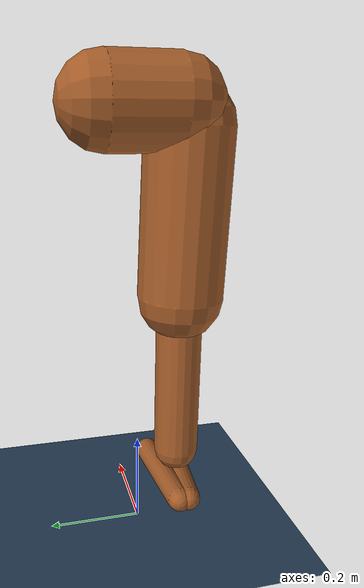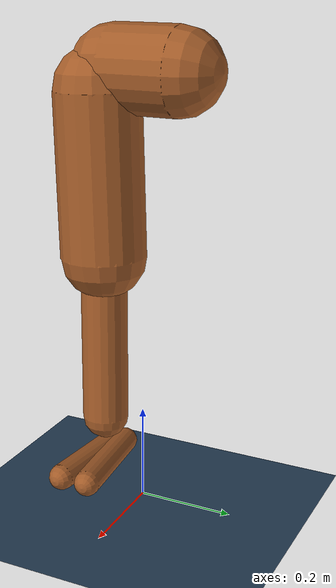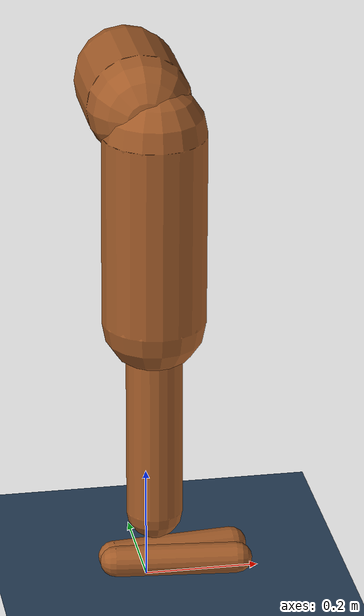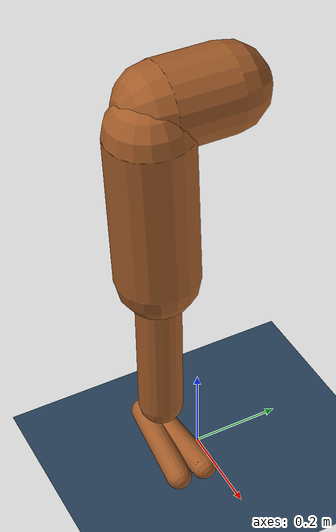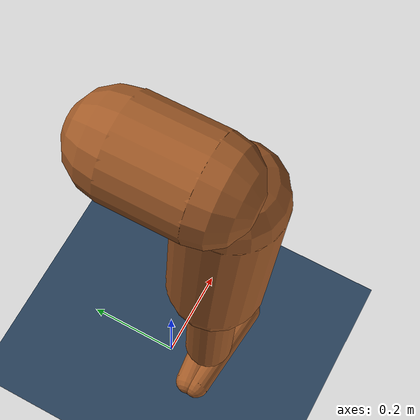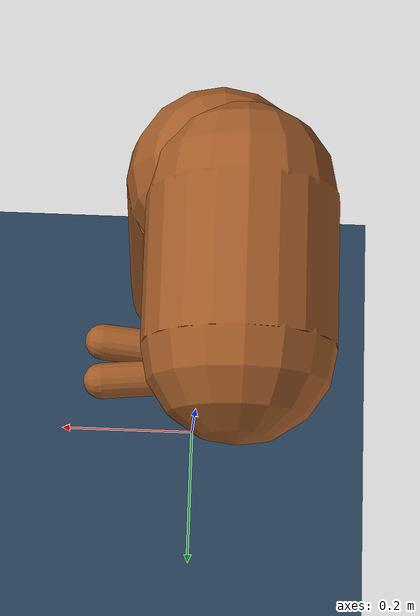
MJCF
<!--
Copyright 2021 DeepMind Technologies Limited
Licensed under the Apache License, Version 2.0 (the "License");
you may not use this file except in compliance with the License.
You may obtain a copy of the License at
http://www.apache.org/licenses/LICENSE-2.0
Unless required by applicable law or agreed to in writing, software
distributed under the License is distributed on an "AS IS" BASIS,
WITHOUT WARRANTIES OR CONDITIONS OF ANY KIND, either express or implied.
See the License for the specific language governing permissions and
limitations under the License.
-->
<mujoco model="Leg">
  <option timestep="0.005"/>

  <visual>
    <map force="0.1" zfar="30"/>
    <rgba haze="0.15 0.25 0.35 1"/>
    <global offwidth="2560" offheight="1440" elevation="-20" azimuth="120"/>
  </visual>

  <statistic center="0 0 0"/>

  <asset>
    <texture type="skybox" builtin="gradient" rgb1=".3 .5 .7" rgb2="0 0 0" width="32" height="512"/>
    <texture name="body" type="cube" builtin="flat" mark="cross" width="127" height="1278" rgb1="0.8 0.6 0.4" rgb2="0.8 0.6 0.4" markrgb="1 1 1" random="0.01"/>
    <material name="body" texture="body" texuniform="true" rgba="0.8 0.6 .4 1"/>
    <texture name="grid" type="2d" builtin="checker" width="512" height="512" rgb1=".1 .2 .3" rgb2=".2 .3 .4"/>
    <material name="grid" texture="grid" texrepeat="1 1" texuniform="true" reflectance=".2"/>
  </asset>

  <default>
    <motor ctrlrange="-1 1" ctrllimited="true"/>
  </default>

    <default>
    <motor ctrlrange="-1 1" ctrllimited="true"/>
    <default class="body">
      <!-- geoms -->
      <geom type="capsule" condim="1" friction=".7" solimp=".9 .99 .003" solref=".015 1" material="body"/>
      <default class="thigh">
        <geom size=".06"/>
      </default>
      <default class="shin">
        <geom fromto="0 0 0 0 0 -.3"  size=".049"/>
      </default>
      <default class="foot">
        <geom size=".027"/>
        <default class="foot1">
          <geom fromto="-.07 -.01 0 .14 -.03 0"/>
        </default>
        <default class="foot2">
          <geom fromto="-.07 .01 0 .14  .03 0"/>
        </default>
      </default>
      <default class="arm_upper">
        <geom size=".04"/>
      </default>
      <default class="arm_lower">
        <geom size=".031"/>
      </default>
      <default class="hand">
        <geom type="sphere" size=".04"/>
      </default>

      <!-- joints -->
      <joint type="hinge" damping=".2" stiffness="1" armature=".01" limited="true" solimplimit="0 .99 .01"/>
      <default class="joint_big">
        <joint damping="5" stiffness="10"/>
        <default class="hip_x">
          <joint range="-30 10"/>
        </default>
        <default class="hip_z">
          <joint range="-60 35"/>
        </default>
        <default class="hip_y">
          <joint axis="0 1 0" range="-150 20"/>
        </default>
        <default class="joint_big_stiff">
          <joint stiffness="20"/>
        </default>
      </default>
      <default class="knee">
        <joint pos="0 0 .02" axis="0 -1 0" range="-160 2"/>
      </default>
      <default class="ankle">
        <joint range="-50 50"/>
        <default class="ankle_y">
          <joint pos="0 0 .08" axis="0 1 0" stiffness="6"/>
        </default>
        <default class="ankle_x">
          <joint pos="0 0 .04" stiffness="3"/>
        </default>
      </default>
      <default class="shoulder">
        <joint range="-85 60"/>
      </default>
      <default class="elbow">
        <joint range="-100 50" stiffness="0"/>
      </default>
    </default>
  </default>

    <worldbody>
        <geom name="floor" size="0 0 .05" type="plane" material="grid" condim="3"/>
        <body name="torso" pos="0 0 0.91">
            <light name="top" pos="0 0 2" mode="trackcom"/>
            <joint name="rootx" axis="1 0 0"  range="-0.1 0.1"          type="slide" limited="true" damping="5" stiffness="10"/>
            <joint name="rooty" axis="0 1 0"  range="-0.1 0.1"          type="slide" limited="true" damping="5" stiffness="10"/>
            <joint name="rootz" axis="0 0 1"  range="-0.1 0.1"          type="slide" limited="true" damping="5" stiffness="10"/>
            <geom name="butt" fromto="-.02 -.07 0 -.02 .07 0" size=".09" type="capsule" condim="1" friction=".7" solimp=".9 .9 .9" solref=".015 1" material="body"/>
            <body name="thigh_right" pos="0 -.1 -.04">
                <joint name="hip_x_right" axis="1 0 0" range="-30 10"        type="hinge" armature=".01" limited="true" solimplimit="0 .99 .01"        damping="5" stiffness="10"/>
                <joint name="hip_z_right" axis="0 0 1" range="-60 35"        type="hinge" armature=".01" limited="true" solimplimit="0 .99 .01"        damping="5" stiffness="10"/>
                <joint name="hip_y_right" axis="0 1 0" range="-150 20"       type="hinge" armature=".01" limited="true" solimplimit="0 .99 .01"        damping="5" stiffness="10"/>
                <geom name="thigh_right" fromto="0 0 0 0 .01 -.34" size=".09" type="capsule" condim="1" friction=".7" solimp=".9 .9 .9" solref=".015 1" material="body"/>
                <body name="shin_right" pos="0 .01 -.4">
                <joint name="knee_right" class="knee"/>
                <geom name="shin_right" class="shin"/>
                <body name="foot_right" pos="0 0 -.39">
                    <joint name="ankle_y_right" class="ankle_y"/>
                    <joint name="ankle_x_right" class="ankle_x" axis="1 0 .5"/>
                    <geom name="foot1_right" class="foot1"/>
                    <geom name="foot2_right" class="foot2"/>
                </body>
                </body>
            </body>
        </body>
    </worldbody>

    <actuator>
        <motor name="rootx"           gear="20"  joint="rootx"/>
        <motor name="rooty"           gear="20"  joint="rooty"/>
        <motor name="hip_x_right"     gear="40"  joint="hip_x_right"/>
        <motor name="hip_z_right"     gear="40"  joint="hip_z_right"/>
        <motor name="hip_y_right"     gear="120" joint="hip_y_right"/>
        <motor name="knee_right"      gear="80"  joint="knee_right"/>
        <motor name="ankle_x_right"   gear="20"  joint="ankle_x_right"/>
        <motor name="ankle_y_right"   gear="20"  joint="ankle_y_right"/>
    </actuator>

    <keyframe>
        <key name="squat" qpos="0 0 -0.099
                                0 0
                                -0.6
                                -0.6
                                -0.2 0.1"/>
    </keyframe>
</mujoco>
